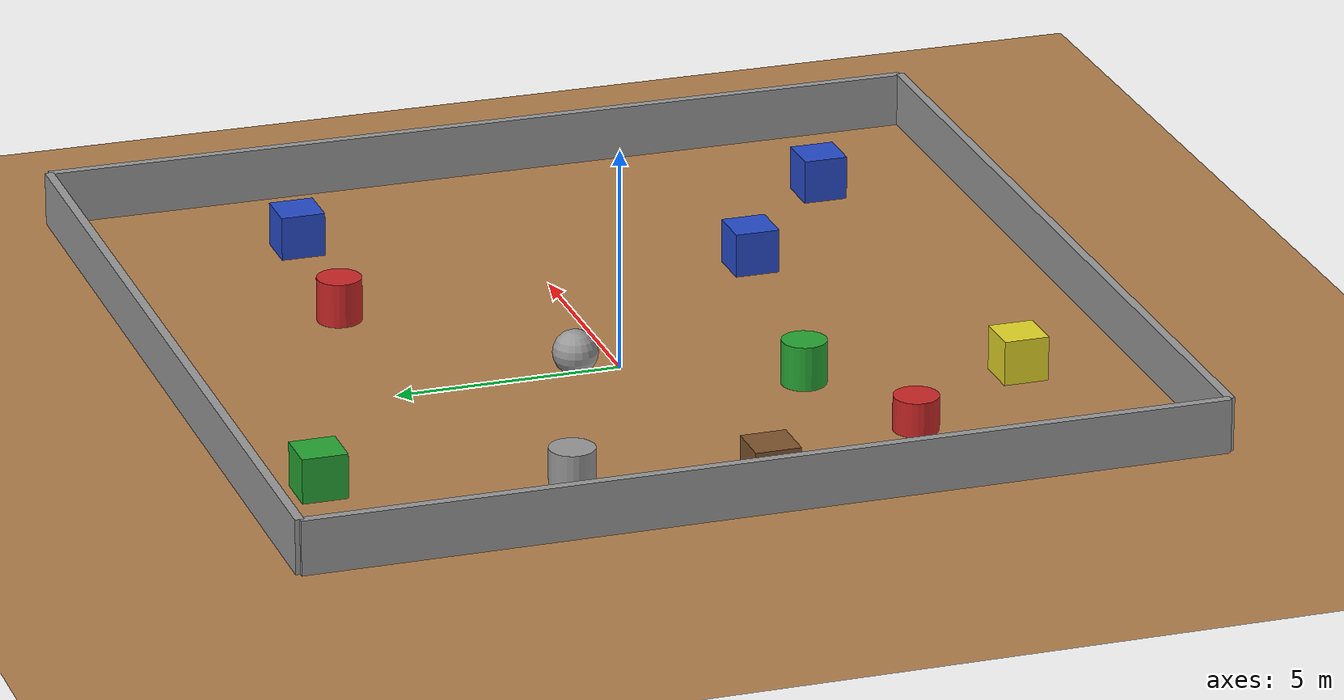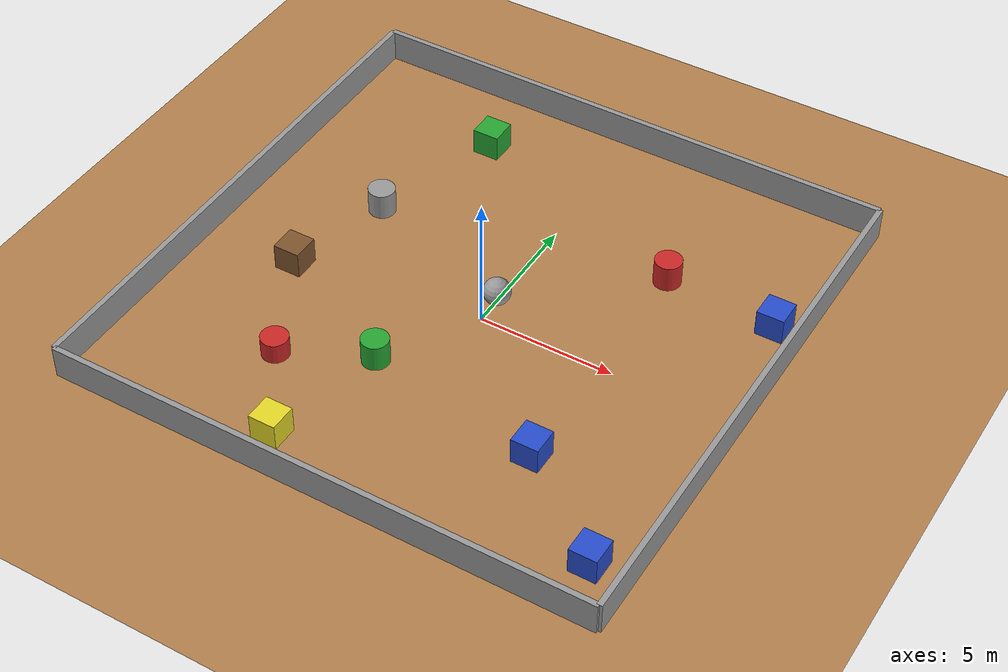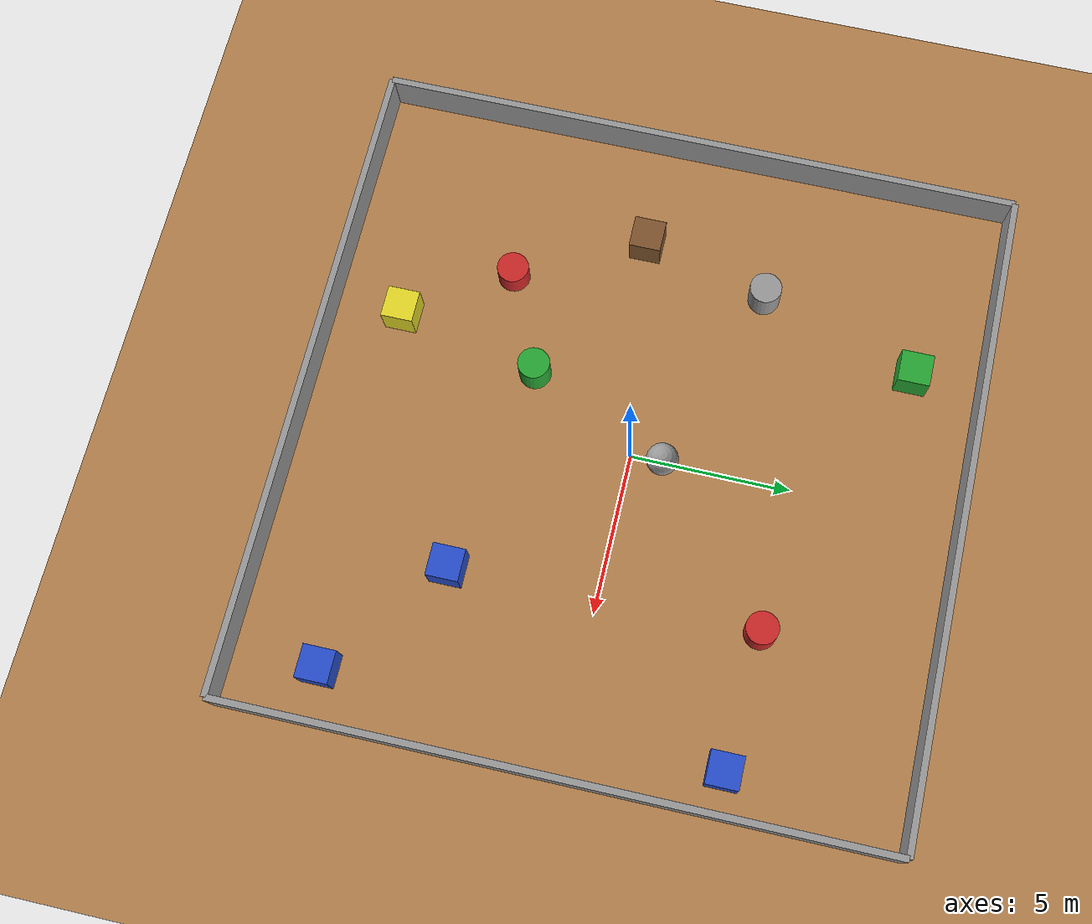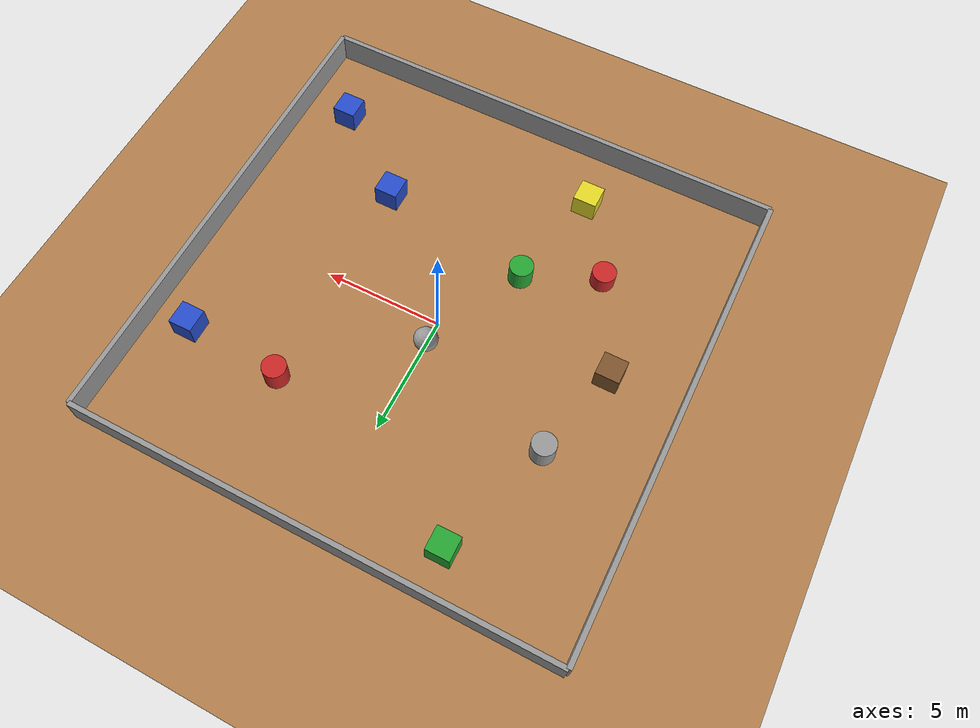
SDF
<sdf version="1.4">
 <world name="default">
  <light name="sun" type="directional">
   <pose>0 0 10 0 -0 0</pose>
   <diffuse>0.8 0.8 0.8 1</diffuse>
   <specular>0.2 0.2 0.2 1</specular>
   <attenuation>
    <range>1000</range>
    <constant>0.9</constant>
    <linear>0.01</linear>
    <quadratic>0.001</quadratic>
   </attenuation>
   <direction>0.5 0.1 -0.9</direction>
  </light>
  <scene><ambient>0.4 0.4 0.4 1</ambient><background>0.7 0.7 0.7 1</background><shadows>1</shadows></scene>
  <physics type="ode">
   <max_step_size>0.01</max_step_size>
   <real_time_factor>1</real_time_factor>
   <real_time_update_rate>100</real_time_update_rate>
   <gravity>0 0 -9.8</gravity>
  </physics>
  <model name="ground_plane_0">
   <static>1</static>
   <link name="link">
    <collision name="collision">
     <geometry><plane><normal>0 0 1</normal><size>100 100</size></plane></geometry>
     <surface><friction><ode><mu>100</mu><mu2>50</mu2></ode></friction></surface>
    </collision>
    <visual name="visual">
     <cast_shadows>0</cast_shadows>
     <geometry><plane><normal>0 0 1</normal><size>100 100</size></plane></geometry>
     <material>
      <script><uri>file://media/materials/scripts/gazebo.material</uri><name>Gazebo/Wood</name></script>
     </material>
    </visual>
    <velocity_decay><linear>0</linear><angular>0</angular></velocity_decay>
   </link>
   <pose>0.497681 0 0 0 -0 0</pose>
  </model>
  <model name="grey_wall_left">
   <static>1</static>
   <link name="link">
    <pose>0 0 1.4 0 -0 0</pose>
    <collision name="collision"><geometry><box><size>20 0.2 1.2</size></box></geometry></collision>
    <visual name="visual">
     <cast_shadows>0</cast_shadows>
     <geometry><box><size>20 0.2 1.2</size></box></geometry>
     <material>
      <script>
       <uri>model://grey_wall/materials/scripts</uri>
       <uri>model://grey_wall/materials/textures</uri>
       <name>vrc/grey_wall</name>
      </script>
     </material>
    </visual>
    <velocity_decay><linear>0</linear><angular>0</angular></velocity_decay>
   </link>
   <pose>0 -10 0 0 -0 0</pose>
  </model>
  <model name="grey_wall_right">
   <static>1</static>
   <link name="link">
    <pose>0 0 1.4 0 -0 0</pose>
    <collision name="collision"><geometry><box><size>20 0.2 1.2</size></box></geometry></collision>
    <visual name="visual">
     <cast_shadows>0</cast_shadows>
     <geometry><box><size>20 0.2 1.2</size></box></geometry>
     <material>
      <script>
       <uri>model://grey_wall/materials/scripts</uri>
       <uri>model://grey_wall/materials/textures</uri>
       <name>vrc/grey_wall</name>
      </script>
     </material>
    </visual>
    <velocity_decay><linear>0</linear><angular>0</angular></velocity_decay>
   </link>
   <pose>0 10 0 0 -0 0</pose>
  </model>
  <model name="grey_wall_front">
   <static>1</static>
   <link name="link">
    <pose>0 0 1.4 0 -0 0</pose>
    <collision name="collision"><geometry><box><size>0.2 20 1.2</size></box></geometry></collision>
    <visual name="visual">
     <cast_shadows>0</cast_shadows>
     <geometry><box><size>0.2 20 1.2</size></box></geometry>
     <material>
      <script>
       <uri>model://grey_wall/materials/scripts</uri>
       <uri>model://grey_wall/materials/textures</uri>
       <name>vrc/grey_wall</name>
      </script>
     </material>
    </visual>
    <velocity_decay><linear>0</linear><angular>0</angular></velocity_decay>
   </link>
   <pose>10 0 0 0 -0 0</pose>
  </model>
  <model name="grey_wall_back">
   <static>1</static>
   <link name="link">
    <pose>0 0 1.4 0 -0 0</pose>
    <collision name="collision"><geometry><box><size>0.2 20 1.2</size></box></geometry></collision>
    <visual name="visual">
     <cast_shadows>0</cast_shadows>
     <geometry><box><size>0.2 20 1.2</size></box></geometry>
     <material>
      <script>
       <uri>model://grey_wall/materials/scripts</uri>
       <uri>model://grey_wall/materials/textures</uri>
       <name>vrc/grey_wall</name>
      </script>
     </material>
    </visual>
    <velocity_decay><linear>0</linear><angular>0</angular></velocity_decay>
   </link>
   <pose>-10 0 0 0 -0 0</pose>
  </model>
  <model name="unit_cylinder_0">
   <pose>4.49394 4.94972 0.499824 -0.000249 -0.000249 -5e-06</pose>
   <link name="link">
    <inertial>
     <mass>1</mass>
     <inertia><ixx>0.145833</ixx><ixy>0</ixy><ixz>0</ixz><iyy>0.145833</iyy><iyz>0</iyz><izz>0.125</izz></inertia>
    </inertial>
    <collision name="collision">
     <geometry><cylinder><radius>0.5</radius><length>1</length></cylinder></geometry>
    </collision>
    <visual name="visual">
     <geometry><cylinder><radius>0.5</radius><length>1</length></cylinder></geometry>
     <material>
      <script><name>Gazebo/Red</name><uri>file://media/materials/scripts/gazebo.material</uri></script>
     </material>
    </visual>
    <velocity_decay><linear>0</linear><angular>0</angular></velocity_decay>
   </link>
   <static>0</static>
  </model>
  <model name="unit_cylinder_1">
   <pose>-2.00015 -3.48865 0.499824 -0.000249 -0.000249 -5e-06</pose>
   <link name="link">
    <inertial>
     <mass>1</mass>
     <inertia><ixx>0.145833</ixx><ixy>0</ixy><ixz>0</ixz><iyy>0.145833</iyy><iyz>0</iyz><izz>0.125</izz></inertia>
    </inertial>
    <collision name="collision">
     <geometry><cylinder><radius>0.5</radius><length>1</length></cylinder></geometry>
    </collision>
    <visual name="visual">
     <geometry><cylinder><radius>0.5</radius><length>1</length></cylinder></geometry>
     <material>
      <script><name>Gazebo/Green</name><uri>file://media/materials/scripts/gazebo.material</uri></script>
     </material>
    </visual>
    <velocity_decay><linear>0</linear><angular>0</angular></velocity_decay>
   </link>
   <static>0</static>
  </model>
  <model name="unit_cylinder">
   <pose>-5.05551 -4.92182 0.24912 -0 -0 -0</pose>
   <link name="link">
    <inertial>
     <mass>1</mass>
     <inertia><ixx>0.145833</ixx><ixy>0</ixy><ixz>0</ixz><iyy>0.145833</iyy><iyz>0</iyz><izz>0.125</izz></inertia>
    </inertial>
    <collision name="collision">
     <geometry><cylinder><radius>0.25</radius><length>0.5</length></cylinder></geometry>
    </collision>
    <visual name="visual">
     <geometry><cylinder><radius>0.5</radius><length>1</length></cylinder></geometry>
     <material>
      <script><name>Gazebo/Red</name><uri>file://media/materials/scripts/gazebo.material</uri></script>
     </material>
    </visual>
    <velocity_decay><linear>0</linear><angular>0</angular></velocity_decay>
   </link>
   <static>0</static>
  </model>
  <model name="unit_box">
   <pose>4.61691 -4.55011 0.49907 -0.0001 0 0</pose>
   <link name="link">
    <inertial>
     <mass>1</mass>
     <inertia>
      <ixx>0.166667</ixx>
      <ixy>0</ixy>
      <ixz>0</ixz>
      <iyy>0.166667</iyy>
      <iyz>0</iyz>
      <izz>0.166667</izz>
     </inertia>
    </inertial>
    <collision name="collision"><geometry><box><size>1 1 1</size></box></geometry></collision>
    <visual name="visual">
     <geometry><box><size>1 1 1</size></box></geometry>
     <material>
      <script><name>Gazebo/Blue</name><uri>file://media/materials/scripts/gazebo.material</uri></script>
     </material>
    </visual>
    <velocity_decay><linear>0</linear><angular>0</angular></velocity_decay>
   </link>
   <static>0</static>
  </model>
  <model name="unit_box_0">
   <pose>8.33786 -7.45976 0.49907 -0.0001 0 0</pose>
   <link name="link">
    <inertial>
     <mass>1</mass>
     <inertia>
      <ixx>0.166667</ixx>
      <ixy>0</ixy>
      <ixz>0</ixz>
      <iyy>0.166667</iyy>
      <iyz>0</iyz>
      <izz>0.166667</izz>
     </inertia>
    </inertial>
    <collision name="collision"><geometry><box><size>1 1 1</size></box></geometry></collision>
    <visual name="visual">
     <geometry><box><size>1 1 1</size></box></geometry>
     <material>
      <script><name>Gazebo/Blue</name><uri>file://media/materials/scripts/gazebo.material</uri></script>
     </material>
    </visual>
    <velocity_decay><linear>0</linear><angular>0</angular></velocity_decay>
   </link>
   <static>0</static>
  </model>
  <model name="unit_box_1">
   <pose>8.68941 4.6943 0.49907 -0.0001 0 0</pose>
   <link name="link">
    <inertial>
     <mass>1</mass>
     <inertia>
      <ixx>0.166667</ixx>
      <ixy>0</ixy>
      <ixz>0</ixz>
      <iyy>0.166667</iyy>
      <iyz>0</iyz>
      <izz>0.166667</izz>
     </inertia>
    </inertial>
    <collision name="collision"><geometry><box><size>1 1 1</size></box></geometry></collision>
    <visual name="visual">
     <geometry><box><size>1 1 1</size></box></geometry>
     <material>
      <script><name>Gazebo/Blue</name><uri>file://media/materials/scripts/gazebo.material</uri></script>
     </material>
    </visual>
    <velocity_decay><linear>0</linear><angular>0</angular></velocity_decay>
   </link>
   <static>0</static>
  </model>
  <spherical_coordinates>
   <surface_model>EARTH_WGS84</surface_model>
   <latitude_deg>0</latitude_deg>
   <longitude_deg>0</longitude_deg>
   <elevation>0</elevation>
   <heading_deg>0</heading_deg>
  </spherical_coordinates>
  <model name="unit_cylinder_1_0">
   <pose>-6 3 0.49912 -0 -0 -0</pose>
   <link name="link">
    <inertial>
     <mass>1</mass>
     <inertia><ixx>1</ixx><ixy>0</ixy><ixz>0</ixz><iyy>1</iyy><iyz>0</iyz><izz>1</izz></inertia>
    </inertial>
    <collision name="collision">
     <geometry><cylinder><radius>0.5</radius><length>1</length></cylinder></geometry>
    </collision>
    <visual name="visual">
     <geometry><cylinder><radius>0.5</radius><length>1</length></cylinder></geometry>
     <material>
      <script><uri>file://media/materials/scripts/gazebo.material</uri><name>Gazebo/Grey</name></script>
     </material>
    </visual>
    <velocity_decay><linear>0</linear><angular>0</angular></velocity_decay>
   </link>
   <static>0</static>
  </model>
  <model name="unit_sphere_1">
   <pose>0 1 0.5 0 -0 0</pose>
   <link name="link">
    <inertial>
     <mass>1</mass>
     <inertia><ixx>1</ixx><ixy>0</ixy><ixz>0</ixz><iyy>1</iyy><iyz>0</iyz><izz>1</izz></inertia>
    </inertial>
    <collision name="collision"><geometry><sphere><radius>0.5</radius></sphere></geometry></collision>
    <visual name="visual">
     <geometry><sphere><radius>0.5</radius></sphere></geometry>
     <material>
      <script><uri>file://media/materials/scripts/gazebo.material</uri><name>Gazebo/Grey</name></script>
     </material>
    </visual>
    <velocity_decay><linear>0</linear><angular>0</angular></velocity_decay>
   </link>
   <static>0</static>
  </model>
  <model name="unit_box_1_0">
   <pose>-4.40651 8 0.5 0 -0 0</pose>
   <link name="link">
    <inertial>
     <mass>1</mass>
     <inertia><ixx>1</ixx><ixy>0</ixy><ixz>0</ixz><iyy>1</iyy><iyz>0</iyz><izz>1</izz></inertia>
    </inertial>
    <collision name="collision"><geometry><box><size>1 1 1</size></box></geometry></collision>
    <visual name="visual">
     <geometry><box><size>1 1 1</size></box></geometry>
     <material>
      <script><uri>file://media/materials/scripts/gazebo.material</uri><name>Gazebo/Green</name></script>
     </material>
    </visual>
    <velocity_decay><linear>0</linear><angular>0</angular></velocity_decay>
   </link>
   <static>0</static>
  </model>
  <model name="unit_box_2">
   <pose>-3 -8 0.5 0 -0 0</pose>
   <link name="link">
    <inertial>
     <mass>1</mass>
     <inertia><ixx>1</ixx><ixy>0</ixy><ixz>0</ixz><iyy>1</iyy><iyz>0</iyz><izz>1</izz></inertia>
    </inertial>
    <collision name="collision"><geometry><box><size>1 1 1</size></box></geometry></collision>
    <visual name="visual">
     <geometry><box><size>1 1 1</size></box></geometry>
     <material>
      <script><uri>file://media/materials/scripts/gazebo.material</uri><name>Gazebo/Yellow</name></script>
     </material>
    </visual>
    <velocity_decay><linear>0</linear><angular>0</angular></velocity_decay>
   </link>
   <static>0</static>
  </model>
  <model name="unit_box_3">
   <pose>-7 -1 0.5 0 -0 0</pose>
   <link name="link">
    <inertial>
     <mass>1</mass>
     <inertia><ixx>1</ixx><ixy>0</ixy><ixz>0</ixz><iyy>1</iyy><iyz>0</iyz><izz>1</izz></inertia>
    </inertial>
    <collision name="collision"><geometry><box><size>1 1 1</size></box></geometry></collision>
    <visual name="visual">
     <geometry><box><size>1 1 1</size></box></geometry>
     <material>
      <script><uri>file://media/materials/scripts/gazebo.material</uri><name>Gazebo/Brown</name></script>
     </material>
    </visual>
    <velocity_decay><linear>0</linear><angular>0</angular></velocity_decay>
   </link>
   <static>0</static>
  </model>
 </world>
</sdf>
